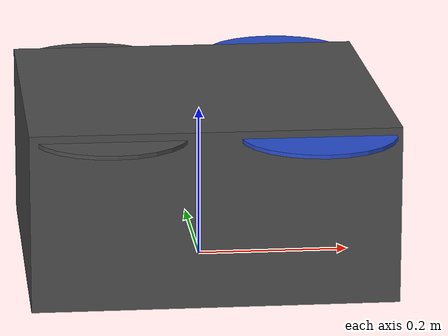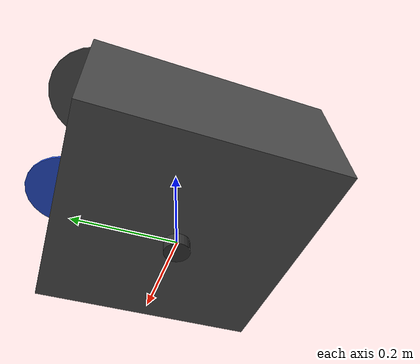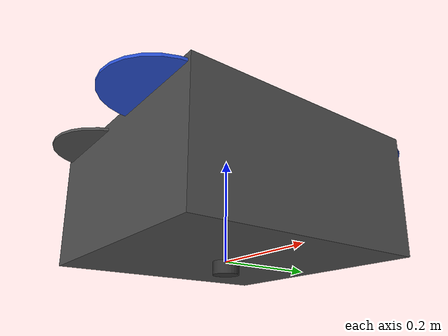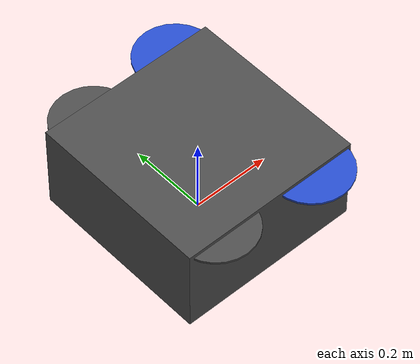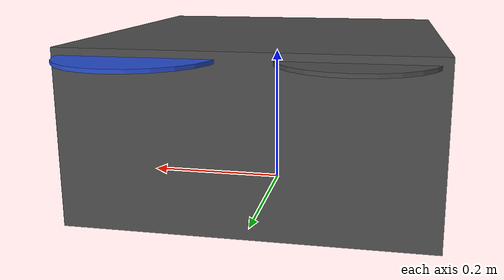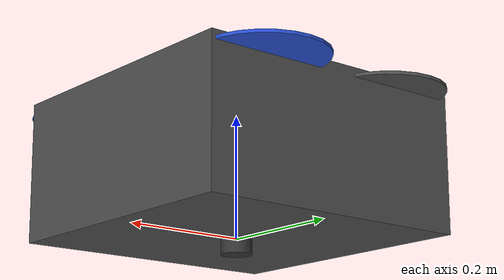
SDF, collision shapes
<?xml version='1.0'?>
<sdf version="1.9">
  <model name="iris_with_down_camera">
    <include>
      <uri>model://iris_with_standoffs</uri>
    </include>

    <!--
      visual markers for debugging
      - blade root    - teal
      - blade tip     - orange
      - blade cp      - yellow
      - blade forward - red
      - blade upward  - blue
    -->

    <!-- plugins -->
    <plugin filename="gz-sim-joint-state-publisher-system"
      name="gz::sim::systems::JointStatePublisher">
    </plugin>
    <plugin filename="gz-sim-lift-drag-system"
        name="gz::sim::systems::LiftDrag">
      <a0>0.3</a0>
      <alpha_stall>1.4</alpha_stall>
      <cla>4.2500</cla>
      <cda>0.10</cda>
      <cma>0.0</cma>
      <cla_stall>-0.025</cla_stall>
      <cda_stall>0.0</cda_stall>
      <cma_stall>0.0</cma_stall>
      <area>0.002</area>
      <air_density>1.2041</air_density>
      <cp>0.084 0 0</cp>
      <forward>0 1 0</forward>
      <upward>0 0 1</upward>
      <link_name>iris_with_standoffs::rotor_0</link_name>
    </plugin>
    <plugin filename="gz-sim-lift-drag-system"
        name="gz::sim::systems::LiftDrag">
      <a0>0.3</a0>
      <alpha_stall>1.4</alpha_stall>
      <cla>4.2500</cla>
      <cda>0.10</cda>
      <cma>0.0</cma>
      <cla_stall>-0.025</cla_stall>
      <cda_stall>0.0</cda_stall>
      <cma_stall>0.0</cma_stall>
      <area>0.002</area>
      <air_density>1.2041</air_density>
      <cp>-0.084 0 0</cp>
      <forward>0 -1 0</forward>
      <upward>0 0 1</upward>
      <link_name>iris_with_standoffs::rotor_0</link_name>
    </plugin>

    <plugin filename="gz-sim-lift-drag-system"
        name="gz::sim::systems::LiftDrag">
      <a0>0.3</a0>
      <alpha_stall>1.4</alpha_stall>
      <cla>4.2500</cla>
      <cda>0.10</cda>
      <cma>0.0</cma>
      <cla_stall>-0.025</cla_stall>
      <cda_stall>0.0</cda_stall>
      <cma_stall>0.0</cma_stall>
      <area>0.002</area>
      <air_density>1.2041</air_density>
      <cp>0.084 0 0</cp>
      <forward>0 1 0</forward>
      <upward>0 0 1</upward>
      <link_name>iris_with_standoffs::rotor_1</link_name>
    </plugin>
    <plugin filename="gz-sim-lift-drag-system"
        name="gz::sim::systems::LiftDrag">
      <a0>0.3</a0>
      <alpha_stall>1.4</alpha_stall>
      <cla>4.2500</cla>
      <cda>0.10</cda>
      <cma>0.0</cma>
      <cla_stall>-0.025</cla_stall>
      <cda_stall>0.0</cda_stall>
      <cma_stall>0.0</cma_stall>
      <area>0.002</area>
      <air_density>1.2041</air_density>
      <cp>-0.084 0 0</cp>
      <forward>0 -1 0</forward>
      <upward>0 0 1</upward>
      <link_name>iris_with_standoffs::rotor_1</link_name>
    </plugin>

    <plugin filename="gz-sim-lift-drag-system"
        name="gz::sim::systems::LiftDrag">
      <a0>0.3</a0>
      <alpha_stall>1.4</alpha_stall>
      <cla>4.2500</cla>
      <cda>0.10</cda>
      <cma>0.0</cma>
      <cla_stall>-0.025</cla_stall>
      <cda_stall>0.0</cda_stall>
      <cma_stall>0.0</cma_stall>
      <area>0.002</area>
      <air_density>1.2041</air_density>
      <cp>0.084 0 0</cp>
      <forward>0 -1 0</forward>
      <upward>0 0 1</upward>
      <link_name>iris_with_standoffs::rotor_2</link_name>
    </plugin>
    <plugin filename="gz-sim-lift-drag-system"
        name="gz::sim::systems::LiftDrag">
      <a0>0.3</a0>
      <alpha_stall>1.4</alpha_stall>
      <cla>4.2500</cla>
      <cda>0.10</cda>
      <cma>0.0</cma>
      <cla_stall>-0.025</cla_stall>
      <cda_stall>0.0</cda_stall>
      <cma_stall>0.0</cma_stall>
      <area>0.002</area>
      <air_density>1.2041</air_density>
      <cp>-0.084 0 0</cp>
      <forward>0 1 0</forward>
      <upward>0 0 1</upward>
      <link_name>iris_with_standoffs::rotor_2</link_name>
    </plugin>

    <plugin filename="gz-sim-lift-drag-system"
        name="gz::sim::systems::LiftDrag">
      <a0>0.3</a0>
      <alpha_stall>1.4</alpha_stall>
      <cla>4.2500</cla>
      <cda>0.10</cda>
      <cma>0.0</cma>
      <cla_stall>-0.025</cla_stall>
      <cda_stall>0.0</cda_stall>
      <cma_stall>0.0</cma_stall>
      <area>0.002</area>
      <air_density>1.2041</air_density>
      <cp>0.084 0 0</cp>
      <forward>0 -1 0</forward>
      <upward>0 0 1</upward>
      <link_name>iris_with_standoffs::rotor_3</link_name>
    </plugin>
    <plugin filename="gz-sim-lift-drag-system"
        name="gz::sim::systems::LiftDrag">
      <a0>0.3</a0>
      <alpha_stall>1.4</alpha_stall>
      <cla>4.2500</cla>
      <cda>0.10</cda>
      <cma>0.0</cma>
      <cla_stall>-0.025</cla_stall>
      <cda_stall>0.0</cda_stall>
      <cma_stall>0.0</cma_stall>
      <area>0.002</area>
      <air_density>1.2041</air_density>
      <cp>-0.084 0 0</cp>
      <forward>0 1 0</forward>
      <upward>0 0 1</upward>
      <link_name>iris_with_standoffs::rotor_3</link_name>
    </plugin>

    <plugin filename="gz-sim-apply-joint-force-system"
      name="gz::sim::systems::ApplyJointForce">
      <joint_name>iris_with_standoffs::rotor_0_joint</joint_name>
    </plugin>
    <plugin filename="gz-sim-apply-joint-force-system"
      name="gz::sim::systems::ApplyJointForce">
      <joint_name>iris_with_standoffs::rotor_1_joint</joint_name>
    </plugin>
    <plugin filename="gz-sim-apply-joint-force-system"
      name="gz::sim::systems::ApplyJointForce">
      <joint_name>iris_with_standoffs::rotor_2_joint</joint_name>
    </plugin>
    <plugin filename="gz-sim-apply-joint-force-system"
      name="gz::sim::systems::ApplyJointForce">
      <joint_name>iris_with_standoffs::rotor_3_joint</joint_name>
    </plugin>

    <plugin name="ArduPilotPlugin"
      filename="ArduPilotPlugin">
      <!-- Port settings -->
      <fdm_addr>127.0.0.1</fdm_addr>
      <fdm_port_in>9002</fdm_port_in>
      <connectionTimeoutMaxCount>5</connectionTimeoutMaxCount>
      <lock_step>1</lock_step>
      <have_32_channels>0</have_32_channels>

      <!-- Frame conventions
        Require by ArduPilot: change model and gazebo from XYZ to XY-Z coordinates
      -->
      <modelXYZToAirplaneXForwardZDown degrees="true">0 0 0 180 0 0</modelXYZToAirplaneXForwardZDown>
      <gazeboXYZToNED degrees="true">0 0 0 180 0 90</gazeboXYZToNED>

      <!-- Sensors -->
      <imuName>iris_with_standoffs::imu_link::imu_sensor</imuName>

      <!--
          incoming control command [0, 1]
          so offset it by 0 to get [0, 1]
          and divide max target by 1.
          offset = 0
          multiplier = 838 max rpm / 1 = 838
        -->
      <control channel="0">
        <jointName>iris_with_standoffs::rotor_0_joint</jointName>
        <useForce>1</useForce>
        <multiplier>838</multiplier>
        <offset>0</offset>
        <servo_min>1100</servo_min>
        <servo_max>1900</servo_max>
        <type>VELOCITY</type>
        <p_gain>0.20</p_gain>
        <i_gain>0</i_gain>
        <d_gain>0</d_gain>
        <i_max>0</i_max>
        <i_min>0</i_min>
        <cmd_max>2.5</cmd_max>
        <cmd_min>-2.5</cmd_min>
        <controlVelocitySlowdownSim>1</controlVelocitySlowdownSim>
      </control>

      <control channel="1">
        <jointName>iris_with_standoffs::rotor_1_joint</jointName>
        <useForce>1</useForce>
        <multiplier>838</multiplier>
        <offset>0</offset>
        <servo_min>1100</servo_min>
        <servo_max>1900</servo_max>
        <type>VELOCITY</type>
        <p_gain>0.20</p_gain>
        <i_gain>0</i_gain>
        <d_gain>0</d_gain>
        <i_max>0</i_max>
        <i_min>0</i_min>
        <cmd_max>2.5</cmd_max>
        <cmd_min>-2.5</cmd_min>
        <controlVelocitySlowdownSim>1</controlVelocitySlowdownSim>
      </control>

      <control channel="2">
        <jointName>iris_with_standoffs::rotor_2_joint</jointName>
        <useForce>1</useForce>
        <multiplier>-838</multiplier>
        <offset>0</offset>
        <servo_min>1100</servo_min>
        <servo_max>1900</servo_max>
        <type>VELOCITY</type>
        <p_gain>0.20</p_gain>
        <i_gain>0</i_gain>
        <d_gain>0</d_gain>
        <i_max>0</i_max>
        <i_min>0</i_min>
        <cmd_max>2.5</cmd_max>
        <cmd_min>-2.5</cmd_min>
        <controlVelocitySlowdownSim>1</controlVelocitySlowdownSim>
      </control>

      <control channel="3">
        <jointName>iris_with_standoffs::rotor_3_joint</jointName>
        <useForce>1</useForce>
        <multiplier>-838</multiplier>
        <offset>0</offset>
        <servo_min>1100</servo_min>
        <servo_max>1900</servo_max>
        <type>VELOCITY</type>
        <p_gain>0.20</p_gain>
        <i_gain>0</i_gain>
        <d_gain>0</d_gain>
        <i_max>0</i_max>
        <i_min>0</i_min>
        <cmd_max>2.5</cmd_max>
        <cmd_min>-2.5</cmd_min>
        <controlVelocitySlowdownSim>1</controlVelocitySlowdownSim>
      </control>

    </plugin>

    <!-- CAMERA CONFIG: edit mount pose, resolution, FOV, and update_rate below -->
    <link name="down_camera_link">
      <inertial>
        <mass>0.01</mass>
        <inertia>
          <ixx>0.00001</ixx>
          <ixy>0</ixy>
          <ixz>0</ixz>
          <iyy>0.00001</iyy>
          <iyz>0</iyz>
          <izz>0.00001</izz>
        </inertia>
      </inertial>
      <visual name="camera_visual">
        <pose>0 0 0 0 0 0</pose>
        <geometry>
          <cylinder>
            <radius>0.025</radius>
            <length>0.050</length>
          </cylinder>
        </geometry>
        <material>
          <ambient>0.2 0.2 0.2</ambient>
          <diffuse>0.2 0.2 0.2</diffuse>
        </material>
      </visual>
      <collision name="camera_collision">
        <pose>0 0 0 0 0 0</pose>
        <geometry>
          <cylinder>
            <radius>0.025</radius>
            <length>0.050</length>
          </cylinder>
        </geometry>
      </collision>
      <sensor name="IMX214" type="camera">
        <pose>0 0 0 0 1.57079632679 0</pose>
        <topic>camera/rgb/image_raw</topic>
        <gz_frame_id>down_camera_link</gz_frame_id>
        <camera>
          <horizontal_fov>2.0</horizontal_fov>
          <image>
            <width>640</width>
            <height>480</height>
          </image>
          <clip>
            <near>0.05</near>
            <far>15000</far>
          </clip>
          <camera_info_topic>camera/rgb/camera_info</camera_info_topic>
        </camera>
        <always_on>1</always_on>
        <update_rate>30</update_rate>
        <visualize>true</visualize>
        <plugin name="GstCameraPlugin" filename="GstCameraPlugin">
          <udp_host>127.0.0.1</udp_host>
          <udp_port>5600</udp_port>
          <use_basic_pipeline>true</use_basic_pipeline>
          <use_cuda>false</use_cuda>
        </plugin>
      </sensor>
    </link>

    <joint name="down_camera_joint" type="fixed">
      <parent>iris_with_standoffs::base_link</parent>
      <child>down_camera_link</child>
      <pose>0 0 -0.10 0 1.57079632679 0</pose>
    </joint>

  </model>
</sdf>

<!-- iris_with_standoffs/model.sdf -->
<sdf version='1.6'>
  <model name='iris'>
    <pose>0 0 0.194923 0 0 0</pose>
    <link name='base_link'>
      <velocity_decay>
        <linear>0.0</linear>
        <angular>0.0</angular>
      </velocity_decay>
      <inertial>
        <pose>0 0 0 0 0 0</pose>
        <mass>1.5</mass>
        <inertia>
          <ixx>0.008</ixx>
          <ixy>0</ixy>
          <ixz>0</ixz>
          <iyy>0.015</iyy>
          <iyz>0</iyz>
          <izz>0.017</izz>
        </inertia>
      </inertial>
      <collision name='base_link_collision'>
        <pose>0 0 -0.08 0 0 0</pose>
        <geometry>
          <box>
            <size>0.47 0.47 0.23</size>
          </box>
        </geometry>
        <surface>
          <contact>
            <ode>
              <max_vel>100.0</max_vel>
              <min_depth>0.001</min_depth>
            </ode>
          </contact>
          <friction>
            <ode>
              <mu>1.0</mu>
              <mu2>1.0</mu2>
            </ode>
          </friction>
        </surface>
      </collision>
      <visual name='base_link_visual'>
        <geometry>
          <mesh>
            <uri>model://../model_source/models/iris_with_standoffs/meshes/iris.dae</uri>
          </mesh>
        </geometry>
        <material>
          <script>
            <name>Gazebo/DarkGrey</name>
          </script>
        </material>
      </visual>

      <visual name='front_left_leg_visual'>
        <pose>0.123 0.22 -0.11 0 0 0</pose>
        <geometry>
          <cylinder>
            <radius>0.005</radius>
            <length>0.17</length>
          </cylinder>
        </geometry>
        <material>
          <script>
            <name>Gazebo/FlatBlack</name>
            <uri>file://media/materials/scripts/gazebo.material</uri>
          </script>
        </material>
      </visual>
      <visual name='front_right_leg_visual'>
        <pose>0.123 -0.22 -0.11 0 0 0</pose>
        <geometry>
          <cylinder>
            <radius>0.005</radius>
            <length>0.17</length>
          </cylinder>
        </geometry>
        <material>
          <script>
            <name>Gazebo/FlatBlack</name>
            <uri>file://media/materials/scripts/gazebo.material</uri>
          </script>
        </material>
      </visual>
      <visual name='rear_left_leg_visual'>
        <pose>-0.140 0.21 -0.11 0 0 0</pose>
        <geometry>
          <cylinder>
            <radius>0.005</radius>
            <length>0.17</length>
          </cylinder>
        </geometry>
        <material>
          <script>
            <name>Gazebo/FlatBlack</name>
            <uri>file://media/materials/scripts/gazebo.material</uri>
          </script>
        </material>
      </visual>
      <visual name='rear_right_leg_visual'>
        <pose>-0.140 -0.21 -0.11 0 0 0</pose>
        <geometry>
          <cylinder>
            <radius>0.005</radius>
            <length>0.17</length>
          </cylinder>
        </geometry>
        <material>
          <script>
            <name>Gazebo/FlatBlack</name>
            <uri>file://media/materials/scripts/gazebo.material</uri>
          </script>
        </material>
      </visual>
    </link>
    <link name='iris/ground_truth/odometry_sensorgt_link'>
      <pose>0 0 0 0 -0 0</pose>
      <inertial>
        <pose>0 0 0 0 -0 0</pose>
        <mass>0.15</mass>
        <inertia>
          <ixx>0.0001</ixx>
          <ixy>0</ixy>
          <ixz>0</ixz>
          <iyy>0.0002</iyy>
          <iyz>0</iyz>
          <izz>0.0002</izz>
        </inertia>
      </inertial>
    </link>
    <joint name='iris/ground_truth/odometry_sensorgt_joint' type='revolute'>
      <child>iris/ground_truth/odometry_sensorgt_link</child>
      <parent>base_link</parent>
      <axis>
        <xyz>0 0 1</xyz>
        <limit>
          <lower>0</lower>
          <upper>0</upper>
          <effort>0</effort>
          <velocity>0</velocity>
        </limit>
        <dynamics>
          <damping>1.0</damping>
        </dynamics>
        <use_parent_model_frame>1</use_parent_model_frame>
      </axis>
      <physics>
        <ode>
          <implicit_spring_damper>1</implicit_spring_damper>
        </ode>
      </physics>
    </joint>
    <link name='iris/imu_link'>
      <inertial>
        <pose>0 0 0 0 0 0</pose>
        <mass>0.15</mass>
        <inertia>
          <ixx>0.00001</ixx>
          <ixy>0</ixy>
          <ixz>0</ixz>
          <iyy>0.00002</iyy>
          <iyz>0</iyz>
          <izz>0.00002</izz>
        </inertia>
      </inertial>
      <sensor name="imu_sensor" type="imu">
        <pose>0 0 0 3.141593 0 0</pose>
        <always_on>1</always_on>
        <update_rate>1000.0</update_rate>
      </sensor>
    </link>
    <joint name='iris/imu_joint' type='revolute'>
      <child>iris/imu_link</child>
      <parent>base_link</parent>
      <axis>
        <xyz>0 0 1</xyz>
        <limit>
          <lower>0</lower>
          <upper>0</upper>
          <effort>0</effort>
          <velocity>0</velocity>
        </limit>
        <dynamics>
          <damping>1.0</damping>
        </dynamics>
        <use_parent_model_frame>1</use_parent_model_frame>
      </axis>
      <physics>
        <ode>
          <implicit_spring_damper>1</implicit_spring_damper>
        </ode>
      </physics>
    </joint>
    <link name='rotor_0'>
      <pose>0.13 -0.22 0.023 0 -0 0</pose>
      <inertial>
        <pose>0 0 0 0 -0 0</pose>
        <mass>0.025</mass>
        <inertia>
          <ixx>9.75e-06</ixx>
          <ixy>0</ixy>
          <ixz>0</ixz>
          <iyy>0.000166704</iyy>
          <iyz>0</iyz>
          <izz>0.000167604</izz>
        </inertia>
      </inertial>
      <collision name='rotor_0_collision'>
        <pose>0 0 0 0 -0 0</pose>
        <geometry>
          <cylinder>
            <length>0.005</length>
            <radius>0.1</radius>
          </cylinder>
        </geometry>
        <surface>
          <contact>
            <ode/>
          </contact>
          <friction>
            <ode/>
          </friction>
        </surface>
      </collision>
      <visual name='rotor_0_visual'>
        <pose>0 0 0 0 -0 0</pose>
        <geometry>
          <mesh>
            <scale>1 1 1</scale>
            <uri>model://../model_source/models/iris_with_standoffs/meshes/iris_prop_ccw.dae</uri>
          </mesh>
        </geometry>
        <material>
          <script>
            <name>Gazebo/Blue</name>
            <uri>__default__</uri>
          </script>
        </material>
      </visual>
      <gravity>1</gravity>
      <velocity_decay/>
      <self_collide>0</self_collide>
    </link>
    <joint name='rotor_0_joint' type='revolute'>
      <child>rotor_0</child>
      <parent>base_link</parent>
      <axis>
        <xyz>0 0 1</xyz>
        <limit>
          <lower>-1e+16</lower>
          <upper>1e+16</upper>
        </limit>
        <dynamics>
          <damping>0.004</damping>
        </dynamics>
        <use_parent_model_frame>1</use_parent_model_frame>
      </axis>
      <physics>
        <ode>
          <implicit_spring_damper>1</implicit_spring_damper>
        </ode>
      </physics>
    </joint>
    <link name='rotor_1'>
      <pose>-0.13 0.2 0.023 0 -0 0</pose>
      <inertial>
        <pose>0 0 0 0 -0 0</pose>
        <mass>0.025</mass>
        <inertia>
          <ixx>9.75e-06</ixx>
          <ixy>0</ixy>
          <ixz>0</ixz>
          <iyy>0.000166704</iyy>
          <iyz>0</iyz>
          <izz>0.000167604</izz>
        </inertia>
      </inertial>
      <collision name='rotor_1_collision'>
        <pose>0 0 0 0 -0 0</pose>
        <geometry>
          <cylinder>
            <length>0.005</length>
            <radius>0.1</radius>
          </cylinder>
        </geometry>
        <surface>
          <contact>
            <ode/>
          </contact>
          <friction>
            <ode/>
          </friction>
        </surface>
      </collision>
      <visual name='rotor_1_visual'>
        <pose>0 0 0 0 -0 0</pose>
        <geometry>
          <mesh>
            <scale>1 1 1</scale>
            <uri>model://../model_source/models/iris_with_standoffs/meshes/iris_prop_ccw.dae</uri>
          </mesh>
        </geometry>
        <material>
          <script>
            <name>Gazebo/DarkGrey</name>
            <uri>__default__</uri>
          </script>
        </material>
      </visual>
      <gravity>1</gravity>
      <velocity_decay/>
      <self_collide>0</self_collide>
    </link>
    <joint name='rotor_1_joint' type='revolute'>
      <child>rotor_1</child>
      <parent>base_link</parent>
      <axis>
        <xyz>0 0 1</xyz>
        <limit>
          <lower>-1e+16</lower>
          <upper>1e+16</upper>
        </limit>
        <dynamics>
          <damping>0.004</damping>
        </dynamics>
        <use_parent_model_frame>1</use_parent_model_frame>
      </axis>
      <physics>
        <ode>
          <implicit_spring_damper>1</implicit_spring_damper>
        </ode>
      </physics>
    </joint>
    <link name='rotor_2'>
      <pose>0.13 0.22 0.023 0 -0 0</pose>
      <inertial>
        <pose>0 0 0 0 -0 0</pose>
        <mass>0.025</mass>
        <inertia>
          <ixx>9.75e-06</ixx>
          <ixy>0</ixy>
          <ixz>0</ixz>
          <iyy>0.000166704</iyy>
          <iyz>0</iyz>
          <izz>0.000167604</izz>
        </inertia>
      </inertial>
      <collision name='rotor_2_collision'>
        <pose>0 0 0 0 -0 0</pose>
        <geometry>
          <cylinder>
            <length>0.005</length>
            <radius>0.1</radius>
          </cylinder>
        </geometry>
        <surface>
          <contact>
            <ode/>
          </contact>
          <friction>
            <ode/>
          </friction>
        </surface>
      </collision>
      <visual name='rotor_2_visual'>
        <pose>0 0 0 0 -0 0</pose>
        <geometry>
          <mesh>
            <scale>1 1 1</scale>
            <uri>model://../model_source/models/iris_with_standoffs/meshes/iris_prop_cw.dae</uri>
          </mesh>
        </geometry>
        <material>
          <script>
            <name>Gazebo/Blue</name>
            <uri>__default__</uri>
          </script>
        </material>
      </visual>
      <gravity>1</gravity>
      <velocity_decay/>
      <self_collide>0</self_collide>
    </link>
    <joint name='rotor_2_joint' type='revolute'>
      <child>rotor_2</child>
      <parent>base_link</parent>
      <axis>
        <xyz>0 0 1</xyz>
        <limit>
          <lower>-1e+16</lower>
          <upper>1e+16</upper>
        </limit>
        <dynamics>
          <damping>0.004</damping>
        </dynamics>
        <use_parent_model_frame>1</use_parent_model_frame>
      </axis>
      <physics>
        <ode>
          <implicit_spring_damper>1</implicit_spring_damper>
        </ode>
      </physics>
    </joint>
    <link name='rotor_3'>
      <pose>-0.13 -0.2 0.023 0 -0 0</pose>
      <inertial>
        <pose>0 0 0 0 -0 0</pose>
        <mass>0.025</mass>
        <inertia>
          <ixx>9.75e-06</ixx>
          <ixy>0</ixy>
          <ixz>0</ixz>
          <iyy>0.000166704</iyy>
          <iyz>0</iyz>
          <izz>0.000167604</izz>
        </inertia>
      </inertial>
      <collision name='rotor_3_collision'>
        <pose>0 0 0 0 -0 0</pose>
        <geometry>
          <cylinder>
            <length>0.005</length>
            <radius>0.1</radius>
          </cylinder>
        </geometry>
        <surface>
          <contact>
            <ode/>
          </contact>
          <friction>
            <ode/>
          </friction>
        </surface>
      </collision>
      <visual name='rotor_3_visual'>
        <pose>0 0 0 0 -0 0</pose>
        <geometry>
          <mesh>
            <scale>1 1 1</scale>
            <uri>model://../model_source/models/iris_with_standoffs/meshes/iris_prop_cw.dae</uri>
          </mesh>
        </geometry>
        <material>
          <script>
            <name>Gazebo/DarkGrey</name>
            <uri>__default__</uri>
          </script>
        </material>
      </visual>
      <gravity>1</gravity>
      <velocity_decay/>
      <self_collide>0</self_collide>
    </link>
    <joint name='rotor_3_joint' type='revolute'>
      <child>rotor_3</child>
      <parent>base_link</parent>
      <axis>
        <xyz>0 0 1</xyz>
        <limit>
          <lower>-1e+16</lower>
          <upper>1e+16</upper>
        </limit>
        <dynamics>
          <damping>0.004</damping>
        </dynamics>
        <use_parent_model_frame>1</use_parent_model_frame>
      </axis>
      <physics>
        <ode>
          <implicit_spring_damper>1</implicit_spring_damper>
        </ode>
      </physics>
    </joint>
    <static>0</static>
  </model>
</sdf>
